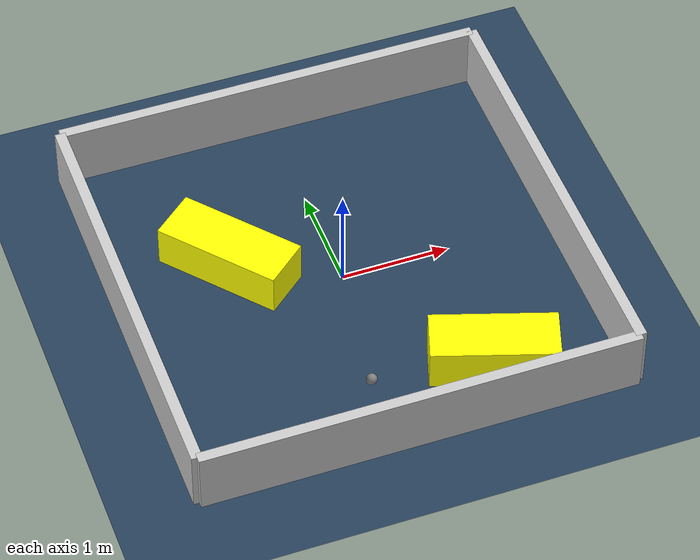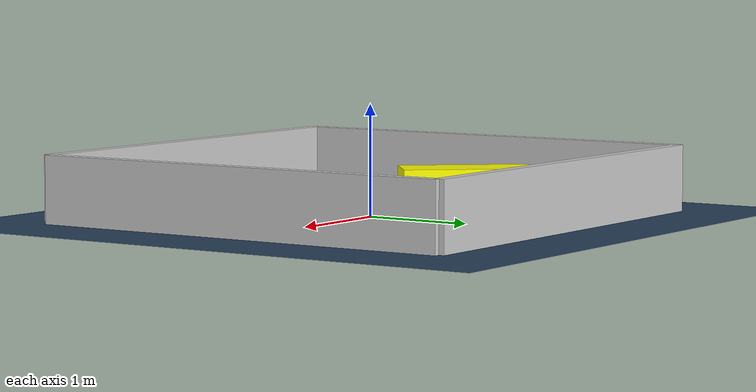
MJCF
<?xml version="1.0" ?>
<mujoco model="generated_environment">
  <option timestep="0.01" integrator="RK4" cone="elliptic"/>
  <default>
    <geom density="1"/>
  </default>
  <asset>
    <texture builtin="gradient" height="3072" rgb1="0.3 0.5 0.7" rgb2="0 0 0" type="skybox" width="512"/>
    <texture builtin="checker" height="300" mark="edge" markrgb="0.8 0.8 0.8" name="groundplane" rgb1="0.2 0.3 0.4" rgb2="0.1 0.2 0.3" type="2d" width="300"/>
    <material name="groundplane" reflectance="0.2" texrepeat="5 5" texture="groundplane" texuniform="true"/>
    <material name="robot" rgba="0.0 1.0 0.0 1"/>
  </asset>
  <worldbody>
    <light dir="0 0 -1" directional="true" pos="0 0 1.5"/>
    <geom condim="4" friction="1.0 0.005 0.001" material="groundplane" name="floor" size="0 0 0.05" type="plane"/>
    <body name="walls">
      <geom name="wall_1" condim="4" pos="-2.0 0.0 0.3" rgba="0.800000011920929 0.800000011920929 0.800000011920929 1.0" size="0.05 2.0 0.3" type="box"/>
      <geom name="wall_2" condim="4" pos="2.0 0.0 0.3" rgba="0.800000011920929 0.800000011920929 0.800000011920929 1.0" size="0.05 2.0 0.3" type="box"/>
      <geom name="wall_3" condim="4" pos="0.0 -2.0 0.3" rgba="0.800000011920929 0.800000011920929 0.800000011920929 1.0" size="2.0 0.05 0.3" type="box"/>
      <geom name="wall_4" condim="4" pos="0.0 2.0 0.3" rgba="0.800000011920929 0.800000011920929 0.800000011920929 1.0" size="2.0 0.05 0.3" type="box"/>
    </body>
    <body name="robot">
      <joint name="joint_x" type="slide" pos="0 0 0" axis="1 0 0"/>
      <joint name="joint_y" type="slide" pos="0 0 0" axis="0 1 0"/>
      <geom name="robot" type="sphere" pos="-0.2264238663428595 -1.3684996737676292 0.2" size="0.05" mass="5." friction="1.0 0.005 0.0001" condim="4"/>
      <site name="sensor_ball"/>
    </body>
    <body name="obstacle_1_movable">
      <geom name="obstacle_1_movable" condim="4" pos="0.887816582593858 -1.4125047627584457 0.2" euler="0 0 71.54780780781165" friction="1.0 0.005 0.001" rgba="1 1 0 1" size="0.23895615930109054 0.5693609297579458 0.2" type="box" mass="0.1"/>
      <joint type="free"/>
    </body>
    <body name="obstacle_2_movable">
      <geom name="obstacle_2_movable" condim="4" pos="-0.912102644666046 0.435466198533335 0.2" euler="0 0 130.22752080010363" friction="1.0 0.005 0.001" rgba="1 1 0 1" size="0.5994220964754741 0.24026611102077267 0.2" type="box" mass="0.1"/>
      <joint type="free"/>
    </body>
  </worldbody>
  <actuator>
    <motor name="actuator_x" joint="joint_x" gear="1" ctrlrange="-1 1"/>
    <motor name="actuator_y" joint="joint_y" gear="1" ctrlrange="-1 1"/>
  </actuator>
</mujoco>
